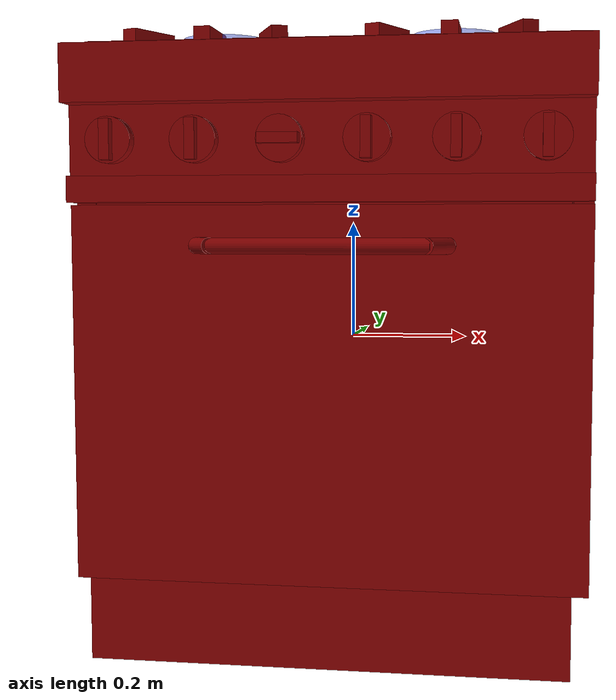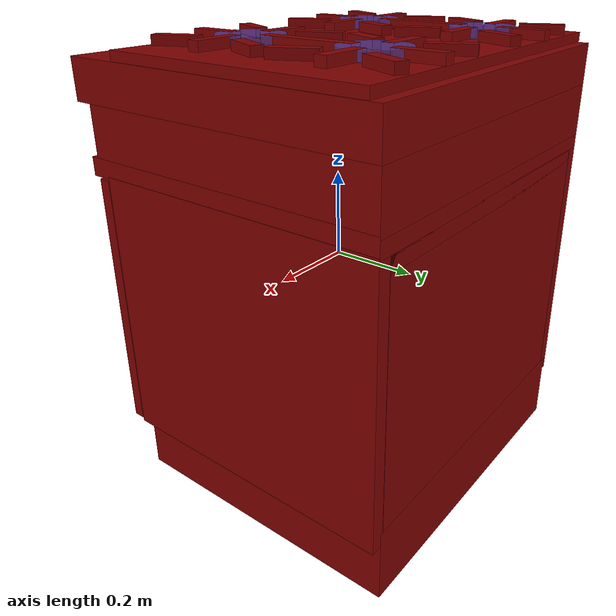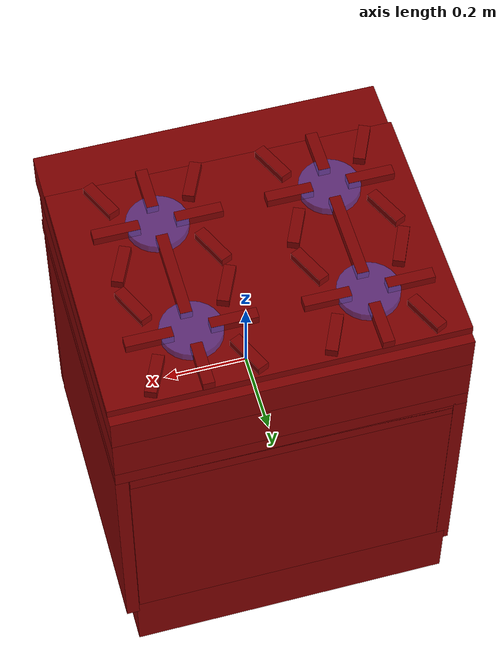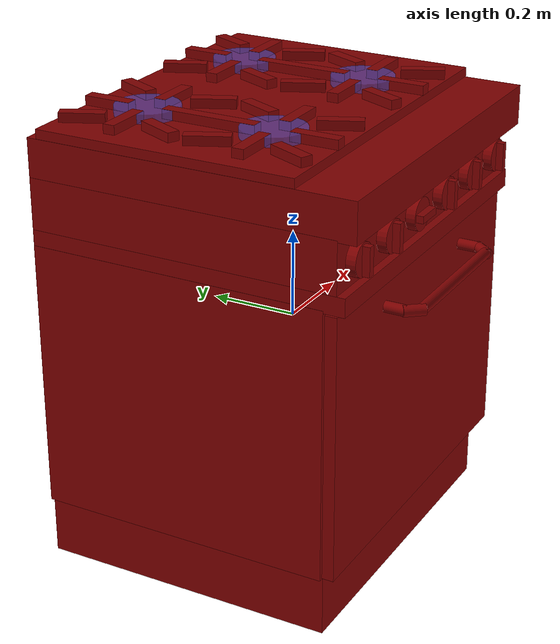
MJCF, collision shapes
<?xml version='1.0' encoding='UTF-8'?>
<mujoco model="model">
  <option timestep="0.002" gravity="0.0 0.0 -9.81"/>
  <compiler angle="radian"/>
  <asset>
    <mesh file="visuals/knob_front_left.obj" name="knob_front_left_vis"/>
    <mesh file="visuals/knob_front_right.obj" name="knob_front_right_vis"/>
    <mesh file="visuals/knob_rear_left.obj" name="knob_rear_left_vis"/>
    <mesh file="visuals/knob_rear_right.obj" name="knob_rear_right_vis"/>
    <mesh file="visuals/Body001.obj" name="Body001_vis"/>
    <mesh file="visuals/Door001.obj" name="Door001_vis"/>
    <mesh file="visuals/Door001_Clear.obj" name="Door001_Clear_vis"/>
    <mesh file="visuals/Knob001.obj" name="Knob001_vis"/>
    <mesh file="visuals/Knob002.obj" name="Knob002_vis"/>
    <mesh file="visuals/Shelf001.obj" name="Shelf001_vis"/>
    <texture file="visuals/T_BC001.png" name="Body001_material" type="2d"/>
    <material name="Body001_material" rgba="1 1 1 1.0" texture="Body001_material" shininess="0.1" specular="4"/>
    <texture file="visuals/T_BC001.png" name="knob_front_left_material" type="2d"/>
    <material name="knob_front_left_material" rgba="1 1 1 1.0" texture="knob_front_left_material" shininess="0.141421377658844" specular="0.3103448502657381"/>
    <texture file="visuals/T_BC001.png" name="knob_front_right_material" type="2d"/>
    <material name="knob_front_right_material" rgba="1 1 1 1.0" texture="knob_front_right_material" shininess="0.141421377658844" specular="0.3103448502657381"/>
    <texture file="visuals/T_BC001.png" name="knob_rear_left_material" type="2d"/>
    <material name="knob_rear_left_material" rgba="1 1 1 1.0" texture="knob_rear_left_material" shininess="0.141421377658844" specular="0.3103448502657381"/>
    <texture file="visuals/T_BC001.png" name="knob_rear_right_material" type="2d"/>
    <material name="knob_rear_right_material" rgba="1 1 1 1.0" texture="knob_rear_right_material" shininess="0.141421377658844" specular="0.3103448502657381"/>
    <texture file="visuals/T_BC001.png" name="Door001_material" type="2d"/>
    <material name="Door001_material" rgba="1 1 1 1.0" texture="Door001_material" shininess="0.1" specular="4"/>
    <texture file="visuals/T_BC001.png" name="Door001_Clear_material" type="2d"/>
    <material name="Door001_Clear_material" rgba="1 1 1 0.5" texture="Door001_Clear_material" shininess="0.141421377658844" specular="0.3103448502657381"/>
    <texture file="visuals/T_BC001.png" name="Knob001_material" type="2d"/>
    <material name="Knob001_material" rgba="1 1 1 1.0" texture="Knob001_material" shininess="0.141421377658844" specular="0.3103448502657381"/>
    <texture file="visuals/T_BC001.png" name="Knob002_material" type="2d"/>
    <material name="Knob002_material" rgba="1 1 1 1.0" texture="Knob002_material" shininess="0.141421377658844" specular="0.3103448502657381"/>
    <texture file="visuals/T_BC001.png" name="Shelf001_material" type="2d"/>
    <material name="Shelf001_material" rgba="1 1 1 1.0" texture="Shelf001_material" shininess="0.1" specular="4"/>
  </asset>
  <default>
    <default class="visual">
      <geom conaffinity="0" contype="0" group="1" type="mesh"/>
    </default>
    <default class="collision">
      <geom group="0" rgba="0.5 0 0 0.5"/>
    </default>
    <default class="spawn">
      <geom group="0" rgba="1 1 1 0.5" contype="0" conaffinity="0"/>
      <site group="0" rgba="1 1 1 0.5"/>
    </default>
    <default class="region">
      <geom group="1" conaffinity="0" contype="0" rgba="0 1 0 0"/>
    </default>
  </default>
  <worldbody>
    <body>
      <body name="object">
        <geom mesh="Body001_vis" type="mesh" solimp="0.998 0.998 0.001" solref="0.001 1" friction="0.95 0.3 0.1" class="visual" material="Body001_material"/>
        <geom class="collision" type="box" pos="-5.2110408432781696e-08 0.020477183163166046 0.4285576641559601" size="0.4064030051231384 0.37442243099212646 0.04507043957710266" quat="1.0 0.0 0.0 0.0" density="1000.0"/>
        <geom class="collision" type="box" pos="-0.0001343176991213113 0.031694669276475906 0.25191187858581543" size="0.4064030051231384 0.3632049560546875 0.02052617073059082" quat="1.0 0.0 0.0 0.0" density="1000.0"/>
        <geom class="collision" type="box" pos="-0.0001343176991213113 0.040909044444561005 0.3267990052700043" size="0.40640291571617126 0.3539905846118927 0.06058862805366516" quat="1.0 0.0 0.0 0.0" density="1000.0"/>
        <geom class="collision" type="box" pos="-0.3911525309085846 0.05539630353450775 -0.07115186750888824" size="0.015705807134509087 0.33950331807136536 0.3078221380710602" quat="1.0 0.0 0.0 0.0" density="1000.0"/>
        <geom class="collision" type="box" pos="1.8537044525146484e-05 0.3516048491001129 -0.07115186750888824" size="0.3750259578227997 0.043294794857501984 0.3078221380710602" quat="1.0 0.0 0.0 0.0" density="1000.0"/>
        <geom class="collision" type="box" pos="0.391840398311615 0.05539630353450775 -0.07115186750888824" size="0.015428900718688965 0.33950331807136536 0.3078221380710602" quat="1.0 0.0 0.0 0.0" density="1000.0"/>
        <geom class="collision" type="box" pos="0.00019954692106693983 0.05511029437184334 0.21657900512218475" size="0.37412795424461365 0.33978936076164246 0.018022269010543823" quat="1.0 0.0 0.0 0.0" density="1000.0"/>
        <geom class="collision" type="box" pos="-0.0068056765012443066 0.05511029437184334 -0.4313870072364807" size="0.3886815905570984 0.33978936076164246 0.08457460254430771" quat="1.0 0.0 0.0 0.0" density="1000.0"/>
        <geom class="collision" type="box" pos="-0.0001343176991213113 0.07458750158548355 0.48491907119750977" size="0.40717947483062744 0.2971278429031372 0.010510548017919064" quat="1.0 0.0 0.0 0.0" density="1000.0"/>
        <geom class="collision" type="box" pos="-0.3105534017086029 -0.07496548444032669 0.5055125951766968" size="0.053832389414310455 0.013457633554935455 0.010762471705675125" quat="1.0 0.0 0.0 0.0" density="1000.0"/>
        <geom class="collision" type="box" pos="-0.12090574204921722 -0.07496548444032669 0.5055125951766968" size="0.053832389414310455 0.013457633554935455 0.010762471705675125" quat="1.0 0.0 0.0 0.0" density="1000.0"/>
        <geom class="collision" type="box" pos="-0.3188350200653076 0.019272977486252785 0.5055125951766968" size="0.04842475429177284 0.013457633554935455 0.010762471705675125" quat="0.840238094329834 0.0 -0.0 -0.5422176122665405" density="1000.0"/>
        <geom class="collision" type="box" pos="-0.21564608812332153 0.07385841757059097 0.5055125951766968" size="0.10882691293954849 0.01345763634890318 0.010762471705675125" quat="0.7071068286895752 0.0 0.0 0.7071067690849304" density="1000.0"/>
        <geom class="collision" type="box" pos="-0.21564610302448273 -0.16922906041145325 0.5055125951766968" size="0.053810589015483856 0.01345763634890318 0.010762471705675125" quat="0.7071068286895752 0.0 0.0 0.7071067690849304" density="1000.0"/>
        <geom class="collision" type="box" pos="-0.3197321593761444 -0.16808462142944336 0.5055125951766968" size="0.04842475429177284 0.013457633554935455 0.010762471705675125" quat="0.840238094329834 0.0 0.0 0.5422176122665405" density="1000.0"/>
        <geom class="collision" type="box" pos="-0.10961977392435074 -0.16808462142944336 0.5055125951766968" size="0.04842475429177284 0.013457633554935455 0.010762471705675125" quat="0.840238094329834 0.0 -0.0 -0.5422176122665405" density="1000.0"/>
        <geom class="collision" type="box" pos="-0.11051688343286514 0.019272981211543083 0.5055125951766968" size="0.04842475429177284 0.013457633554935455 0.010762471705675125" quat="0.840238094329834 0.0 0.0 0.5422176122665405" density="1000.0"/>
        <geom class="collision" type="box" pos="-0.11051688343286514 0.3165367841720581 0.5055125951766968" size="0.04842475429177284 0.013457633554935455 0.010762471705675125" quat="0.840238094329834 0.0 0.0 0.5422176122665405" density="1000.0"/>
        <geom class="collision" type="box" pos="-0.10961977392435074 0.1291791796684265 0.5055125951766968" size="0.04842475429177284 0.013457633554935455 0.010762471705675125" quat="0.840238094329834 0.0 -0.0 -0.5422176122665405" density="1000.0"/>
        <geom class="collision" type="box" pos="-0.3197321593761444 0.1291791796684265 0.5055125951766968" size="0.04842475429177284 0.013457633554935455 0.010762471705675125" quat="0.840238094329834 0.0 0.0 0.5422176122665405" density="1000.0"/>
        <geom class="collision" type="box" pos="-0.21564608812332153 0.3183315694332123 0.5055125951766968" size="0.053810589015483856 0.01345763634890318 0.010762471705675125" quat="0.7071068286895752 0.0 0.0 0.7071067690849304" density="1000.0"/>
        <geom class="collision" type="box" pos="-0.3188350200653076 0.3165367543697357 0.5055125951766968" size="0.04842475429177284 0.013457633554935455 0.010762471705675125" quat="0.840238094329834 0.0 -0.0 -0.5422176122665405" density="1000.0"/>
        <geom class="collision" type="box" pos="-0.12090574204921722 0.22229832410812378 0.5055125951766968" size="0.053832389414310455 0.013457633554935455 0.010762471705675125" quat="1.0 0.0 0.0 0.0" density="1000.0"/>
        <geom class="collision" type="box" pos="-0.3105534017086029 0.22229832410812378 0.5055125951766968" size="0.053832389414310455 0.013457633554935455 0.010762471705675125" quat="1.0 0.0 0.0 0.0" density="1000.0"/>
        <geom class="collision" type="box" pos="0.08846911787986755 0.2222982943058014 0.5055125951766968" size="0.053832389414310455 0.013457633554935455 0.010762471705675125" quat="1.0 0.0 0.0 0.0" density="1000.0"/>
        <geom class="collision" type="box" pos="0.27811676263809204 0.2222982943058014 0.5055125951766968" size="0.053832389414310455 0.013457633554935455 0.010762471705675125" quat="1.0 0.0 0.0 0.0" density="1000.0"/>
        <geom class="collision" type="box" pos="0.08018748462200165 0.31653672456741333 0.5055125951766968" size="0.04842475429177284 0.013457633554935455 0.010762471705675125" quat="0.840238094329834 0.0 -0.0 -0.5422176122665405" density="1000.0"/>
        <geom class="collision" type="box" pos="0.18337643146514893 0.3183315396308899 0.5055125951766968" size="0.053810589015483856 0.01345763634890318 0.010762471705675125" quat="0.7071068286895752 0.0 0.0 0.7071067690849304" density="1000.0"/>
        <geom class="collision" type="box" pos="0.07929037511348724 0.12917914986610413 0.5055125951766968" size="0.04842475429177284 0.013457633554935455 0.010762471705675125" quat="0.840238094329834 0.0 0.0 0.5422176122665405" density="1000.0"/>
        <geom class="collision" type="box" pos="0.2894027531147003 0.12917914986610413 0.5055125951766968" size="0.04842475429177284 0.013457633554935455 0.010762471705675125" quat="0.840238094329834 0.0 -0.0 -0.5422176122665405" density="1000.0"/>
        <geom class="collision" type="box" pos="0.2885056138038635 0.3165367543697357 0.5055125951766968" size="0.04842475429177284 0.013457633554935455 0.010762471705675125" quat="0.840238094329834 0.0 0.0 0.5422176122665405" density="1000.0"/>
        <geom class="collision" type="box" pos="0.2885056138038635 0.019272951409220695 0.5055125951766968" size="0.04842475429177284 0.013457633554935455 0.010762471705675125" quat="0.840238094329834 0.0 0.0 0.5422176122665405" density="1000.0"/>
        <geom class="collision" type="box" pos="0.2894027531147003 -0.16808465123176575 0.5055125951766968" size="0.04842475429177284 0.013457633554935455 0.010762471705675125" quat="0.840238094329834 0.0 -0.0 -0.5422176122665405" density="1000.0"/>
        <geom class="collision" type="box" pos="0.07929037511348724 -0.16808465123176575 0.5055125951766968" size="0.04842475429177284 0.013457633554935455 0.010762471705675125" quat="0.840238094329834 0.0 0.0 0.5422176122665405" density="1000.0"/>
        <geom class="collision" type="box" pos="0.18337641656398773 -0.16922909021377563 0.5055125951766968" size="0.053810589015483856 0.01345763634890318 0.010762471705675125" quat="0.7071068286895752 0.0 0.0 0.7071067690849304" density="1000.0"/>
        <geom class="collision" type="box" pos="0.18337643146514893 0.07385838776826859 0.5055125951766968" size="0.10882691293954849 0.01345763634890318 0.010762471705675125" quat="0.7071068286895752 0.0 0.0 0.7071067690849304" density="1000.0"/>
        <geom class="collision" type="box" pos="0.08018748462200165 0.019272947683930397 0.5055125951766968" size="0.04842475429177284 0.013457633554935455 0.010762471705675125" quat="0.840238094329834 0.0 -0.0 -0.5422176122665405" density="1000.0"/>
        <geom class="collision" type="box" pos="0.27811676263809204 -0.07496551424264908 0.5055125951766968" size="0.053832389414310455 0.013457633554935455 0.010762471705675125" quat="1.0 0.0 0.0 0.0" density="1000.0"/>
        <geom class="collision" type="box" pos="0.08846911787986755 -0.07496551424264908 0.5055125951766968" size="0.053832389414310455 0.013457633554935455 0.010762471705675125" quat="1.0 0.0 0.0 0.0" density="1000.0"/>
        <body name="knob_front_left">
          <joint axis="0.0 -1.0 0.0" pos="-0.33723536133766174 -0.3306903541088104 0.32767820358276367" limited="true" name="knob_front_left_joint" range="0.0 3.141592653589793" type="hinge" damping="0.05" armature="0.001"/>
          <geom mesh="knob_front_left_vis" type="mesh" solimp="0.998 0.998 0.001" solref="0.001 1" friction="0.95 0.3 0.1" class="visual" material="knob_front_left_material"/>
          <geom class="collision" type="cylinder" pos="-0.33723536133766174 -0.3247526288032532 0.32767820358276367" size="0.036232754588127136 0.010816382244229317" quat="0.7071068286895752 0.7071067690849304 0.0 0.0" density="1000.0"/>
          <geom class="collision" type="box" pos="-0.33723536133766174 -0.3437874913215637 0.3274794816970825" size="0.008053257130086422 0.008392240852117538 0.031496912240982056" quat="1.0 0.0 0.0 0.0" density="1000.0" name="knob_front_left_main"/>
        </body>
        <body name="knob_front_right">
          <joint axis="0.0 -1.0 0.0" pos="0.33626067638397217 -0.3306903541088104 0.32767820358276367" limited="true" name="knob_front_right_joint" range="0.0 3.141592653589793" type="hinge" damping="0.05" armature="0.001"/>
          <geom mesh="knob_front_right_vis" type="mesh" solimp="0.998 0.998 0.001" solref="0.001 1" friction="0.95 0.3 0.1" class="visual" material="knob_front_right_material"/>
          <geom class="collision" type="cylinder" pos="0.3362906575202942 -0.3247526288032532 0.32767820358276367" size="0.036232754588127136 0.010816382244229317" quat="0.7071068286895752 0.7071067690849304 0.0 0.0" density="1000.0"/>
          <geom class="collision" type="box" pos="0.3362906575202942 -0.3437874913215637 0.3274794816970825" size="0.008053257130086422 0.008392240852117538 0.031496912240982056" quat="1.0 0.0 0.0 0.0" density="1000.0" name="knob_front_right_main"/>
        </body>
        <body name="knob_rear_left">
          <joint axis="0.0 -1.0 0.0" pos="-0.2025970071554184 -0.3306903541088104 0.32767820358276367" limited="true" name="knob_rear_left_joint" range="0.0 3.141592653589793" type="hinge" damping="0.05" armature="0.001"/>
          <geom mesh="knob_rear_left_vis" type="mesh" solimp="0.998 0.998 0.001" solref="0.001 1" friction="0.95 0.3 0.1" class="visual" material="knob_rear_left_material"/>
          <geom class="collision" type="cylinder" pos="-0.2025301605463028 -0.3247526288032532 0.32767820358276367" size="0.036232754588127136 0.010816382244229317" quat="0.7071068286895752 0.7071067690849304 0.0 0.0" density="1000.0"/>
          <geom class="collision" type="box" pos="-0.2025301605463028 -0.3437874913215637 0.3274794816970825" size="0.008053257130086422 0.008392240852117538 0.031496912240982056" quat="1.0 0.0 0.0 0.0" density="1000.0" name="knob_rear_left_main"/>
        </body>
        <body name="knob_rear_right">
          <joint axis="0.0 -1.0 0.0" pos="0.2017243355512619 -0.3306903541088104 0.32767820358276367" limited="true" name="knob_rear_right_joint" range="0.0 3.141592653589793" type="hinge" damping="0.05" armature="0.001"/>
          <geom mesh="knob_rear_right_vis" type="mesh" solimp="0.998 0.998 0.001" solref="0.001 1" friction="0.95 0.3 0.1" class="visual" material="knob_rear_right_material"/>
          <geom class="collision" type="cylinder" pos="0.20181338489055634 -0.3247526288032532 0.32767820358276367" size="0.036232754588127136 0.010816382244229317" quat="0.7071068286895752 0.7071067690849304 0.0 0.0" density="1000.0"/>
          <geom class="collision" type="box" pos="0.20181338489055634 -0.3437874913215637 0.3274794816970825" size="0.008053257130086422 0.008392240852117538 0.031496912240982056" quat="1.0 0.0 0.0 0.0" density="1000.0" name="knob_rear_right_main"/>
        </body>
        <body name="Door001">
          <joint axis="1.0 0.0 0.0" pos="0.00042250752449035645 -0.2842273414134979 -0.373471200466156" limited="true" name="Door001_joint" range="0.0 1.5707963267948966" type="hinge" damping="1" frictionloss="1" armature=".01" stiffness="6" springref="-3"/>
          <geom mesh="Door001_vis" type="mesh" solimp="0.998 0.998 0.001" solref="0.001 1" friction="0.95 0.3 0.1" class="visual" material="Door001_material"/>
          <geom class="collision" type="box" pos="0.0006502658361569047 -0.3008546829223633 -0.0719592273235321" size="0.4061472713947296 0.013365493156015873 0.29955747723579407" quat="1.0 0.0 0.0 0.0" density="1000.0"/>
          <geom class="collision" type="cylinder" pos="9.373958164360374e-05 -0.38560181856155396 0.1649908721446991" size="0.012389549054205418 0.16732807457447052" quat="0.7071068286895752 -0.0 0.7071067690849304 0.0" density="1000.0"/>
          <geom class="collision" type="cylinder" pos="-0.1878090798854828 -0.3379608690738678 0.1649908572435379" size="0.012389549054205418 0.024187367409467697" quat="0.5000000596046448 -0.5 0.5 0.4999999701976776" density="1000.0"/>
          <geom class="collision" type="cylinder" pos="-0.177419975399971 -0.3735806345939636 0.1649908572435379" size="0.012389549054205418 0.024187367409467697" quat="0.30575087666511536 -0.6375864148139954 0.30575084686279297 0.6375863552093506" density="1000.0"/>
          <geom class="collision" type="cylinder" pos="0.1782139539718628 -0.373580664396286 0.1649908870458603" size="0.012389549054205418 0.024187367409467697" quat="0.30575087666511536 -0.6375864148139954 -0.30575084686279297 -0.6375863552093506" density="1000.0"/>
          <geom class="collision" type="cylinder" pos="0.18860305845737457 -0.3379608988761902 0.1649908870458603" size="0.012389549054205418 0.024187367409467697" quat="0.5000000596046448 -0.5 -0.5 -0.4999999701976776" density="1000.0"/>
          <body name="Door001_Clear">
            <geom mesh="Door001_Clear_vis" type="mesh" solimp="0.998 0.998 0.001" solref="0.001 1" friction="0.95 0.3 0.1" class="visual" material="Door001_Clear_material"/>
            <geom class="collision" type="box" pos="0.00020719882741104811 -0.2973012924194336 -0.07443337887525558" size="0.3068065941333771 0.011482787318527699 0.20272661745548248" quat="1.0 0.0 0.0 0.0" density="1000.0"/>
          </body>
        </body>
        <body name="Knob001">
          <joint axis="0.0 1.0 0.0" pos="-0.06758110225200653 -0.33069032430648804 0.3276400566101074" limited="true" name="Knob001_joint" range="0.0 5.235987755982989" type="hinge" damping="0.05" armature="0.001" springref="-0.1"/>
          <geom mesh="Knob001_vis" type="mesh" solimp="0.998 0.998 0.001" solref="0.001 1" friction="0.95 0.3 0.1" class="visual" material="Knob001_material"/>
          <geom class="collision" type="cylinder" pos="-0.06748466938734055 -0.3247526288032532 0.32767820358276367" size="0.036232754588127136 0.010816382244229317" quat="0.7071068286895752 0.7071067690849304 0.0 0.0" density="1000.0"/>
          <geom class="collision" type="box" pos="-0.0672859326004982 -0.3437874913215637 0.32767820358276367" size="0.008053257130086422 0.008392240852117538 0.031496912240982056" quat="0.7071068286895752 0.0 -0.7071067690849304 0.0" density="1000.0"/>
        </body>
        <body name="Knob002">
          <joint axis="0.0 1.0 0.0" pos="0.06694101542234421 -0.33069032430648804 0.3276451528072357" limited="true" name="Knob002_joint" range="0.0 5.585053606381854" type="hinge" damping="0.05" armature="0.001" springref="-0.1"/>
          <geom mesh="Knob002_vis" type="mesh" solimp="0.998 0.998 0.001" solref="0.001 1" friction="0.95 0.3 0.1" class="visual" material="Knob002_material"/>
          <geom class="collision" type="cylinder" pos="0.06694870442152023 -0.3247526288032532 0.32767820358276367" size="0.036232754588127136 0.010816382244229317" quat="0.7071068286895752 0.7071067690849304 0.0 0.0" density="1000.0"/>
          <geom class="collision" type="box" pos="0.06694870442152023 -0.3437874913215637 0.3274794816970825" size="0.008053257130086422 0.008392240852117538 0.031496912240982056" quat="1.0 0.0 0.0 0.0" density="1000.0"/>
        </body>
        <body name="Shelf001">
          <joint axis="0.0 -1.0 0.0" pos="0.0011161863803863525 0.006839588284492493 -0.07454217970371246" limited="true" name="Shelf001_joint" range="0.0 0.5" type="slide" damping="1" frictionloss="1" armature=".01" stiffness="0.05"/>
          <geom mesh="Shelf001_vis" type="mesh" solimp="0.998 0.998 0.001" solref="0.001 1" friction="0.95 0.3 0.1" class="visual" material="Shelf001_material"/>
          <geom class="collision" type="box" pos="0.0011161863803863525 0.006839588284492493 -0.07454217970371246" size="0.36968109011650085 0.2670382261276245 0.004225022159516811" quat="1.0 0.0 0.0 0.0" density="1000.0"/>
        </body>
        <geom class="region" name="reg_int" type="box" pos="0.0011062473058700562 0.015205234289169312 -0.07226356863975525" size="0.37458910048007965 0.29539063572883606 0.27330347895622253"/>
        <site type="cylinder" rgba="0.3 0.4 1 0.5" size="0.07108497619628906 0.011468073353171349" pos="-0.2145998328924179 0.22614623606204987 0.5043269395828247" name="burner_on_rear_left"/>
        <site type="cylinder" rgba="0.3 0.4 1 0.5" size="0.07083646208047867 0.011427980847656727" pos="-0.21459995210170746 -0.07205526530742645 0.5043269395828247" name="burner_on_front_left"/>
        <site type="cylinder" rgba="0.3 0.4 1 0.5" size="0.07112635672092438 0.011474749073386192" pos="0.1832798421382904 -0.07360698282718658 0.5043269395828247" name="burner_on_front_right"/>
        <site type="cylinder" rgba="0.3 0.4 1 0.5" size="0.07073274999856949 0.011411248706281185" pos="0.18327981233596802 0.22381851077079773 0.5043269395828247" name="burner_on_rear_right"/>
        <site name="burner_rear_left_place_site" type="cylinder" rgba="0.3 0.4 1 0" size="0.07108497619628906 0.011468073353171349" pos="-0.2145998328924179 0.22614623606204987 0.5043269395828247"/>
        <site name="burner_front_left_place_site" type="cylinder" rgba="0.3 0.4 1 0" size="0.07083646208047867 0.011427980847656727" pos="-0.21459995210170746 -0.07205526530742645 0.5043269395828247"/>
        <site name="burner_front_right_place_site" type="cylinder" rgba="0.3 0.4 1 0" size="0.07112635672092438 0.011474749073386192" pos="0.1832798421382904 -0.07360698282718658 0.5043269395828247"/>
        <site name="burner_rear_right_place_site" type="cylinder" rgba="0.3 0.4 1 0" size="0.07073274999856949 0.011411248706281185" pos="0.18327981233596802 0.22381851077079773 0.5043269395828247"/>
        <geom class="region" name="reg_main" type="box" pos="0.0 0.04180006682872772 -0.021698370575904846" size="0.40640294551849365 0.3544498085975647 0.49423080682754517"/>
      </body>
    </body>
  </worldbody>
  <actuator>
    <motor name="knob_front_left_joint_actuator" joint="knob_front_left_joint" gear="10"/>
    <motor name="knob_front_right_joint_actuator" joint="knob_front_right_joint" gear="10"/>
    <motor name="knob_rear_left_joint_actuator" joint="knob_rear_left_joint" gear="10"/>
    <motor name="knob_rear_right_joint_actuator" joint="knob_rear_right_joint" gear="10"/>
    <motor name="Door001_joint_actuator" joint="Door001_joint" gear="50"/>
    <motor name="Knob001_joint_actuator" joint="Knob001_joint" gear="50"/>
    <motor name="Knob002_joint_actuator" joint="Knob002_joint" gear="50"/>
    <motor name="Shelf001_joint_actuator" joint="Shelf001_joint" gear="50"/>
  </actuator>
</mujoco>
